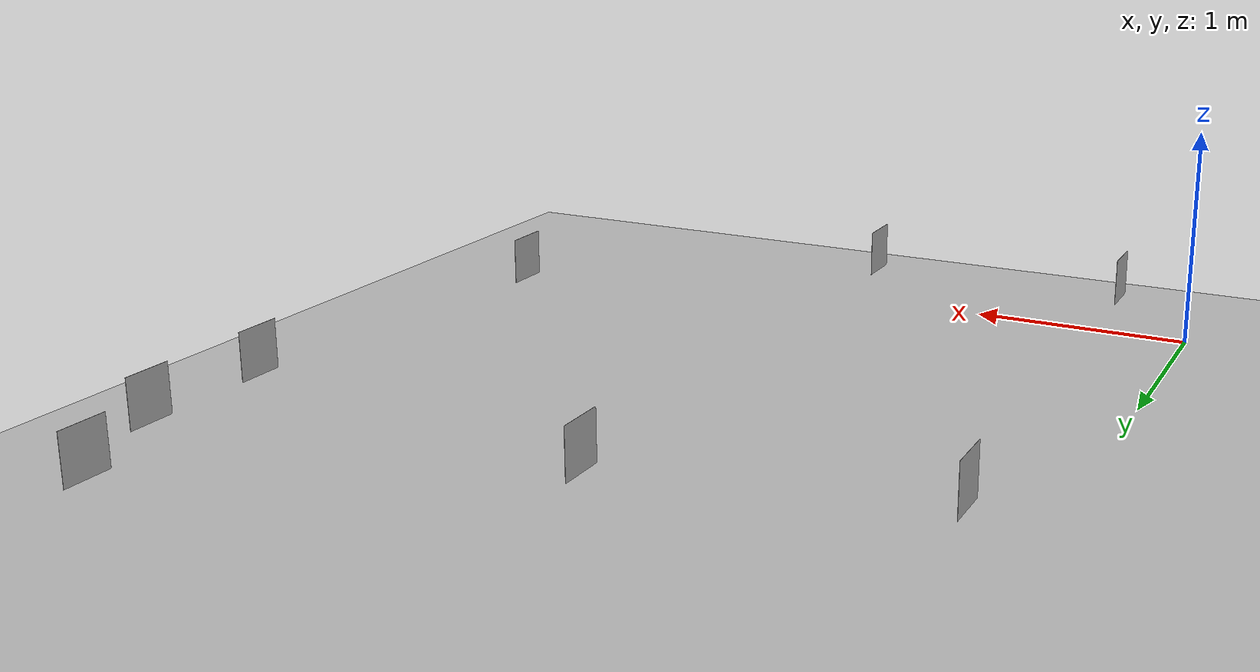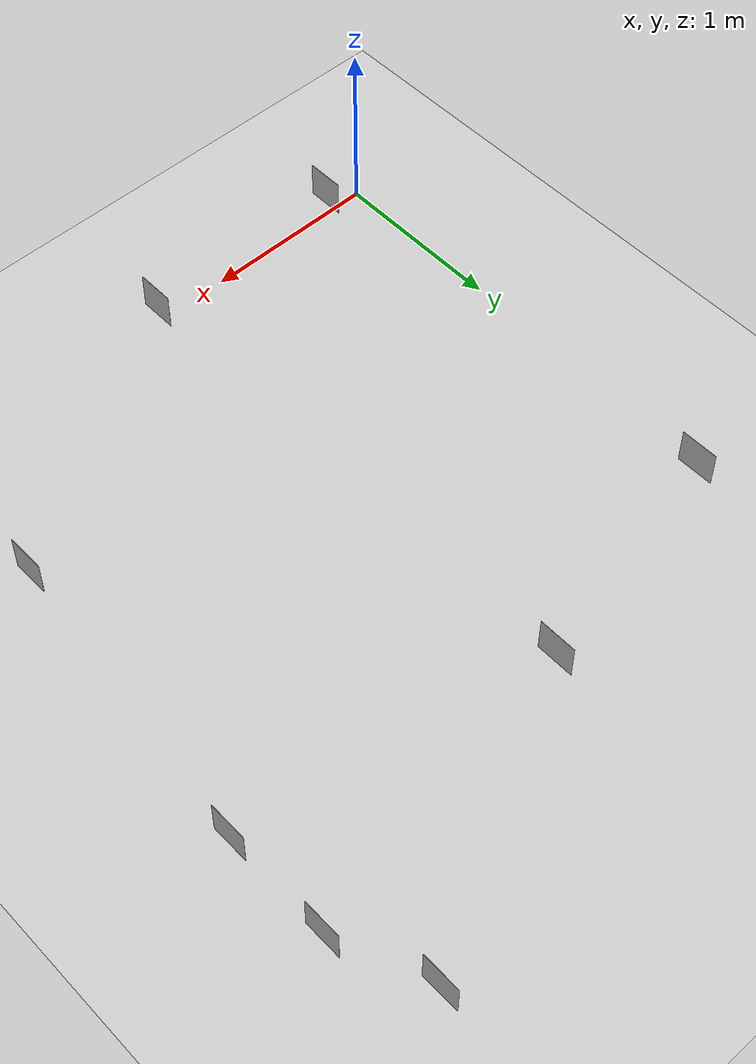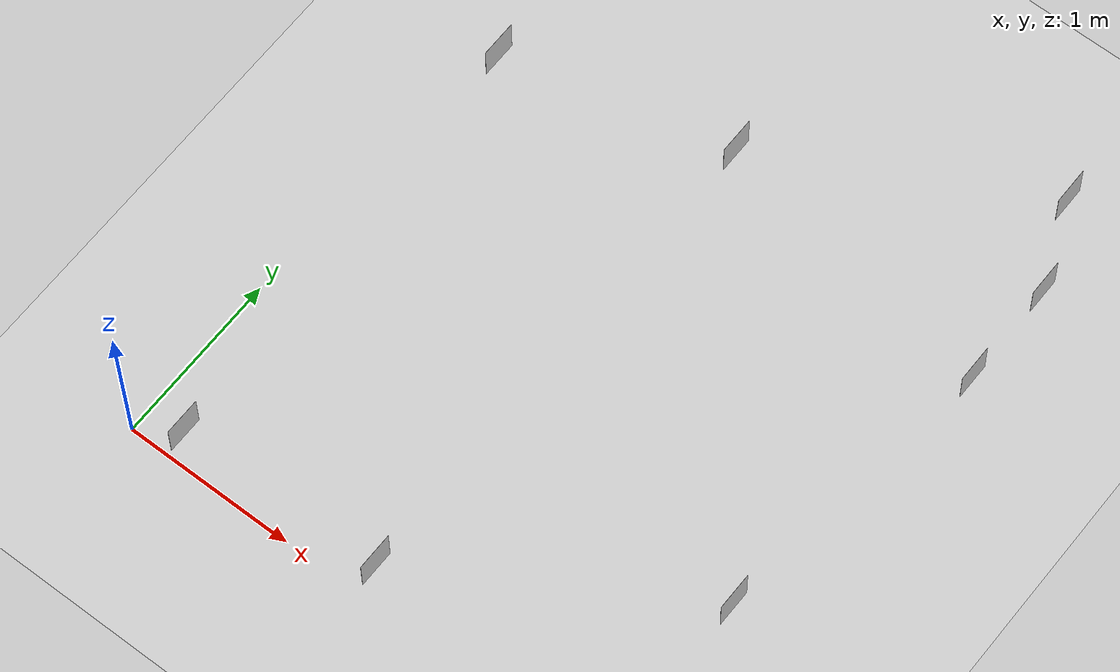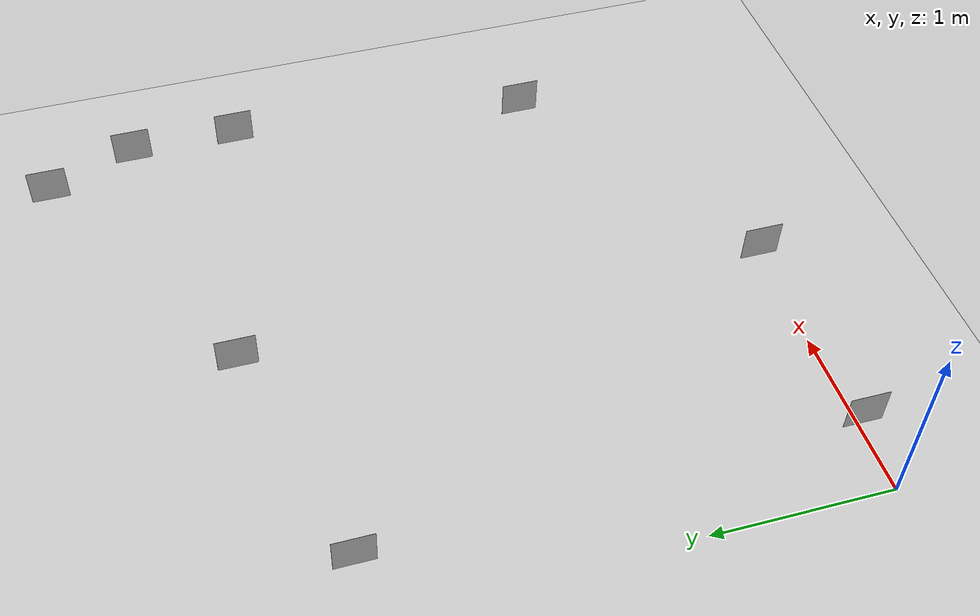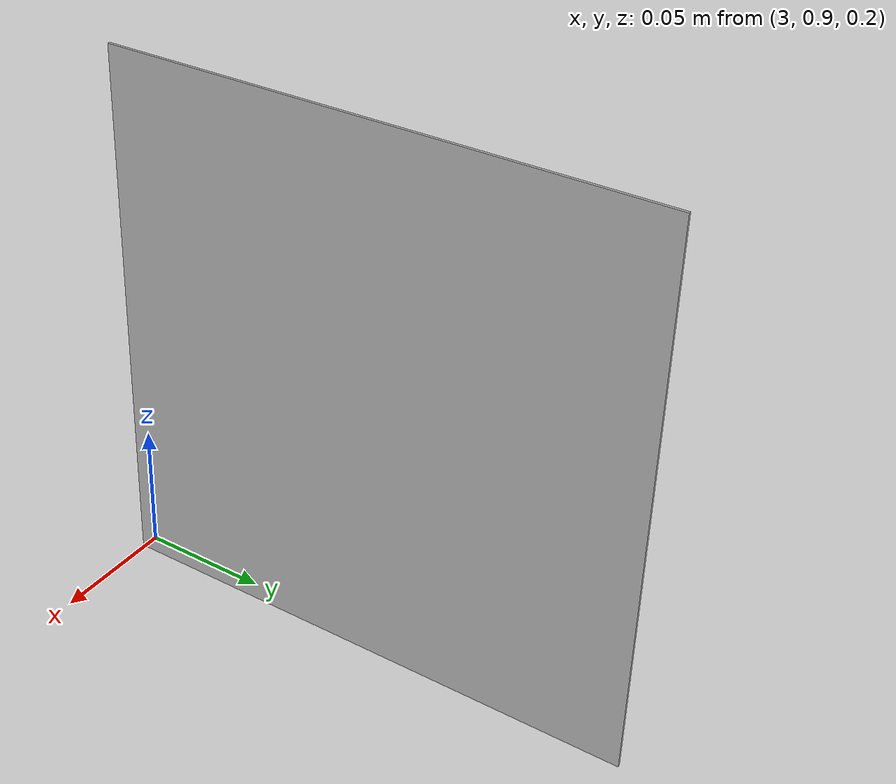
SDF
<?xml version="1.0" ?>
<sdf version="1.4">
  <world name="default">
    <!-- A global light source -->
    <include>
      <uri>model://sun</uri>
    </include>
    <!-- A ground plane -->
    <include>
      <uri>model://ground_plane</uri>
    </include>
    <include>
      <uri>model://april_tag_1</uri>
      <name>april_tag_1_1</name>
      <pose>0.3 0.08 0.3 0.0 0.0 0.0</pose>
      <scale>1.0 1.0 1.0</scale>
    </include>
    <include>
      <uri>model://april_tag_1</uri>
      <name>april_tag_1_2</name>
      <pose>1.5 3.0 0.3 0.0 0 0.0</pose>
      <scale>1.0 1.0 1.0</scale>
    </include>
    <include>
      <uri>model://april_tag_2</uri>
      <name>april_tag_2_1</name>
      <pose>3.2 3.3 0.3 3.1416 0.0 0.0</pose>
      <scale>1.0 1.0 1.0</scale>
    </include>
    <include>
      <uri>model://april_tag_2</uri>
      <name>april_tag_2_2</name>
      <pose>3.2 2.7 0.3 3.1416 0.0 0.0</pose>
      <scale>1.0 1.0 1.0</scale>
    </include>
    <include>
      <uri>model://april_tag_3</uri>
      <name>april_tag_3</name>
      <pose>1.5 0.1 0.3 1.5708 0.0 0.0</pose>
      <scale>1.0 1.0 1.0</scale>
    </include>
    <include>
      <uri>model://april_tag_4</uri>
      <name>april_tag_4</name>
      <pose>3.0 3.8 0.3 -1.5708 0.0 0.0</pose>
      <scale>1.0 1.0 1.0</scale>
    </include>
    <include>
      <uri>model://april_tag_5</uri>
      <name>april_tag_5_1</name>
      <pose>0.2 2.7 0.3 0.0 0 0.0</pose>
      <scale>1.0 1.0 1.0</scale>
    </include>
    <include>
      <uri>model://april_tag_5</uri>
      <name>april_tag_5_2</name>
      <pose>3.0 1.0 0.3 3.1416 0.0 0.0</pose>
      <scale>1.0 1.0 1.0</scale>
    </include>

    <!-- Own physics settings to speed up simulation -->
    <physics type='ode'>
      <max_step_size>0.01</max_step_size>
      <real_time_factor>1</real_time_factor>
      <real_time_update_rate>100</real_time_update_rate>
      <gravity>0 0 -9.8</gravity>
    </physics>
  </world>
</sdf>

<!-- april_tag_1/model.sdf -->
<sdf version='1.4'>
  <model name="april_tag_1">
    <static>true</static>
    <pose>0 0 0 -1.5707963267948966 0 0</pose>
    <link name="tag">
      <pose>0 0 0 0 0 0</pose>
      <visual name='visual'>
        <geometry>
          <mesh>
            <uri>
              model://april_tag_1/meshes/april_tag_1.dae
            </uri>
          </mesh>
        </geometry>
      </visual>
    </link>
  </model>
</sdf>

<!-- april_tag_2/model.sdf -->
<sdf version='1.4'>
  <model name="april_tag_2">
    <static>true</static>
    <pose>0 0 0 -1.5707963267948966 0 0</pose>
    <link name="tag">
      <pose>0 0 0 0 0 0</pose>
      <visual name='visual'>
        <geometry>
          <mesh>
            <uri>
              model://april_tag_2/meshes/april_tag_2.dae
            </uri>
          </mesh>
        </geometry>
      </visual>
    </link>
  </model>
</sdf>

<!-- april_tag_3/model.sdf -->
<sdf version='1.4'>
  <model name="april_tag_3">
    <static>true</static>
    <pose>0 0 0 -1.5707963267948966 0 0</pose>
    <link name="tag">
      <pose>0 0 0 0 0 0</pose>
      <visual name='visual'>
        <geometry>
          <mesh>
            <uri>
              model://april_tag_3/meshes/april_tag_3.dae
            </uri>
          </mesh>
        </geometry>
      </visual>
    </link>
  </model>
</sdf>

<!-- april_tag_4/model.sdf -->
<sdf version='1.4'>
  <model name="april_tag_4">
    <static>true</static>
    <pose>0 0 0 -1.5707963267948966 0 0</pose>
    <link name="tag">
      <pose>0 0 0 0 0 0</pose>
      <visual name='visual'>
        <geometry>
          <mesh>
            <uri>
              model://april_tag_4/meshes/april_tag_4.dae
            </uri>
          </mesh>
        </geometry>
      </visual>
    </link>
  </model>
</sdf>

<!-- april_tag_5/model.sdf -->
<sdf version='1.4'>
  <model name="april_tag_5">
    <static>true</static>
    <pose>0 0 0 -1.5707963267948966 0 0</pose>
    <link name="tag">
      <pose>0 0 0 0 0 0</pose>
      <visual name='visual'>
        <geometry>
          <mesh>
            <uri>
              model://april_tag_5/meshes/april_tag_5.dae
            </uri>
          </mesh>
        </geometry>
      </visual>
    </link>
  </model>
</sdf>
